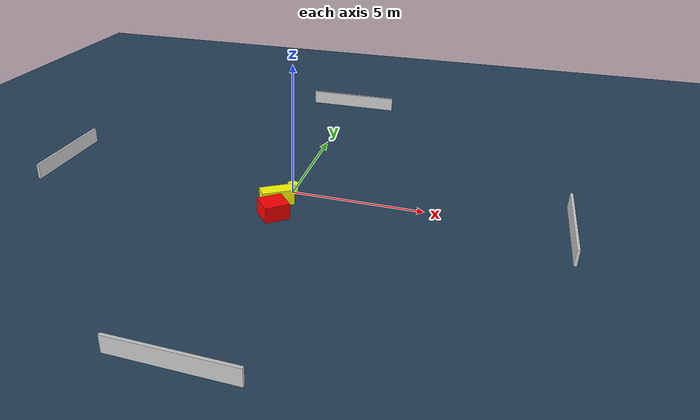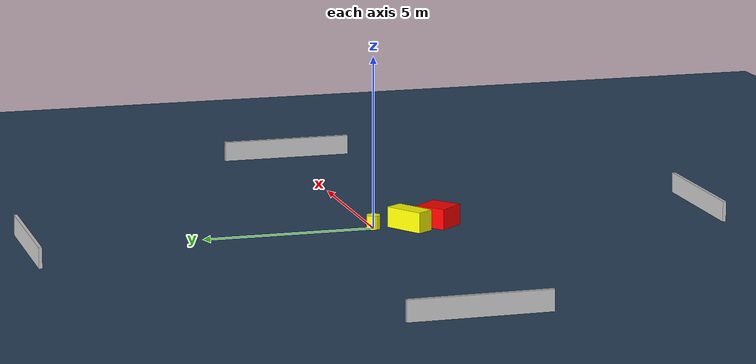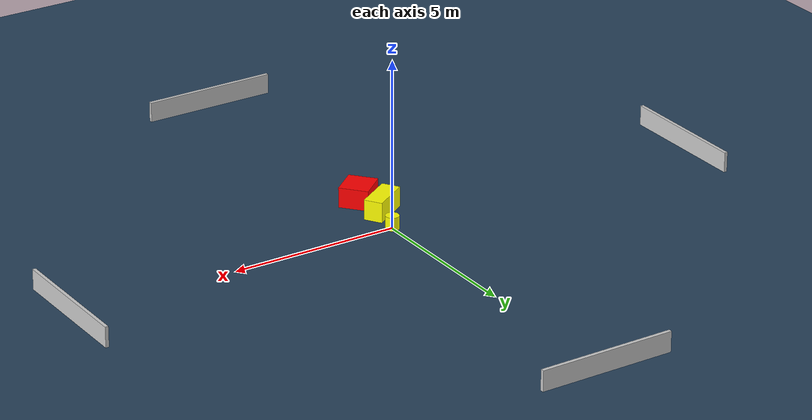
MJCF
<?xml version="1.0" ?>
<mujoco model="generated_environment">
  <option timestep="0.01" integrator="RK4" cone="elliptic"/>
  <default>
    <geom density="1"/>
  </default>
  <asset>
    <texture builtin="gradient" height="3072" name="skybox" rgb1="0.3 0.5 0.7" rgb2="0 0 0" type="skybox" width="512"/>
    <texture builtin="checker" height="300" name="groundplane" rgb1="0.2 0.3 0.4" rgb2="0.1 0.2 0.3" type="2d" width="300"/>
    <material name="groundplane" reflectance="0.2" texrepeat="5 5" texture="groundplane"/>
  </asset>
  <worldbody>
    <light dir="0 0 -1" directional="true" pos="0 0 1.5"/>
    <geom condim="3" friction="0.5 0.005 0.001" material="groundplane" name="floor" pos="0 0 0" size="0 0 0.05" type="plane"/>
    <body name="walls">
      <geom name="wall_1" condim="4" pos="-10.0 0.0 0.3" rgba="0.800000011920929 0.800000011920929 0.800000011920929 1.0" size="0.05 2.0 0.3" type="box"/>
      <geom name="wall_2" condim="4" pos="10.0 0.0 0.3" rgba="0.800000011920929 0.800000011920929 0.800000011920929 1.0" size="0.05 2.0 0.3" type="box"/>
      <geom name="wall_3" condim="4" pos="0.0 -10.0 0.3" rgba="0.800000011920929 0.800000011920929 0.800000011920929 1.0" size="2.0 0.05 0.3" type="box"/>
      <geom name="wall_4" condim="4" pos="0.0 10.0 0.3" rgba="0.800000011920929 0.800000011920929 0.800000011920929 1.0" size="2.0 0.05 0.3" type="box"/>
    </body>
    <body name="robot">
      <joint name="joint_x" type="slide" pos="0 0 0" axis="1 0 0"/>
      <joint name="joint_y" type="slide" pos="0 0 0" axis="0 1 0"/>
      <geom name="robot" type="cylinder" pos="0.0 0.0 0.2" size="0.2 0.2 0.0" mass="5.0" friction="1.0 0.005 0.0001" condim="4" rgba="1.0 1.0 0.0 1.0"/>
    </body>
    <body name="obstacle_1_movable">
      <geom name="obstacle_1_movable" condim="4" pos="-0.3030342322117915 -0.9952721709303749 0.3" euler="0 0 32.72880210538161" friction="0.0 0.005 0.001" rgba="1.0 1.0 0.0 1.0" size="0.6011543568315947 0.2713810245200468 0.3" type="box" mass="0.1"/>
      <joint type="free"/>
    </body>
    <body name="obstacle_2_static">
      <geom name="obstacle_2_static" condim="4" pos="-0.11247492698176369 -1.9193136065370757 0.3" euler="0 0 309.83399750618105" friction="0.0 0.005 0.001" rgba="1.0 0.0 0.0 1.0" size="0.4354856758833255 0.4640764641456216 0.3" type="box"/>
    </body>
  </worldbody>
  <actuator>
    <motor name="actuator_x" joint="joint_x" gear="1" ctrlrange="-1 1"/>
    <motor name="actuator_y" joint="joint_y" gear="1" ctrlrange="-1 1"/>
  </actuator>
</mujoco>
